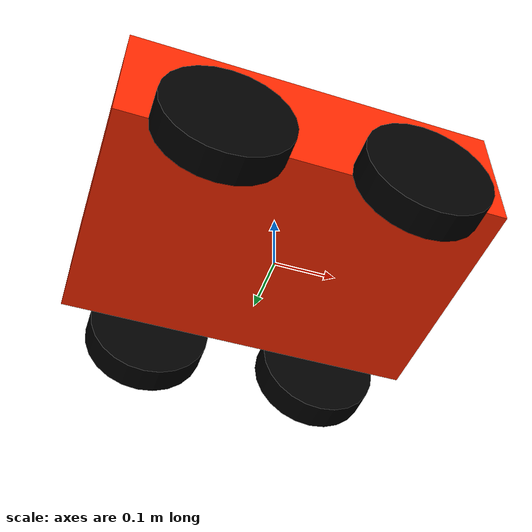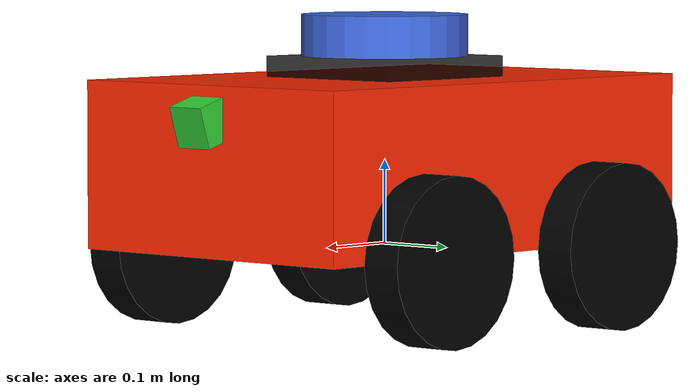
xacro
<?xml version="1.0" ?>
<robot name="one_robot" xmlns:xacro="http://www.ros.org/wiki/xacro">

  <!-- Properties -->
  <xacro:property name="base_width" value="0.4"/>
  <xacro:property name="base_length" value="0.6"/>
  <xacro:property name="base_height" value="0.2"/>
  <xacro:property name="wheel_radius" value="0.1"/>
  <xacro:property name="wheel_width" value="0.05"/>
  <xacro:property name="wheel_mass" value="2.5"/>
  <xacro:property name="base_mass" value="15.0"/>

  <!-- Materials -->
  <material name="red">
    <color rgba="1 0.156 0 1"/>
  </material>

  <material name="blue">
    <color rgba="0.25 0.41 0.88 1"/>
  </material>

  <material name="green">
    <color rgba="0.2 0.8 0.2 1"/>
  </material>

  <material name="black">
    <color rgba="0 0 0 1"/>
  </material>

  <material name="black_lidar">
    <color rgba="0 0 0 0.8"/>
  </material>

  <!-- Base Link -->
  <link name="base_link">
    <visual>
      <geometry>
        <box size="${base_length} ${base_width} ${base_height}"/>
      </geometry>
      <origin xyz="0 0 ${base_height/2}" rpy="0 0 0"/>
      <material name="red"/>
    </visual>
    <collision>
      <geometry>
        <box size="${base_length} ${base_width} ${base_height}"/>
      </geometry>
      <origin xyz="0 0 ${base_height/2}" rpy="0 0 0"/>
    </collision>
    <inertial>
      <origin xyz="0 0 ${base_height/2}" rpy="0 0 0"/>
      <mass value="${base_mass}"/>
      <inertia ixx="${(1/12) * base_mass * (base_width*base_width + base_height*base_height)}"
               ixy="0"
               ixz="0"
               iyy="${(1/12) * base_mass * (base_length*base_length + base_height*base_height)}"
               iyz="0"
               izz="${(1/12) * base_mass * (base_width*base_width + base_length*base_length)}"/>
    </inertial>
  </link>

  <!-- Camera Link -->
  <link name="camera_link">
    <visual>
      <geometry>
        <box size="0.05 0.05 0.05"/>
      </geometry>
      <origin xyz="0.05 0 0.025" rpy="0 0 0"/>
      <material name="green"/>
    </visual>
    <collision>
      <geometry>
        <box size="0.05 0.05 0.05"/>
      </geometry>
      <origin xyz="0.05 0 0.025" rpy="0 0 0"/>
    </collision>
    <inertial>
      <origin xyz="0 0 0.025" rpy="0 0 0"/>
      <mass value="0.1"/>
      <inertia ixx="0.001" ixy="0" ixz="0" iyy="0.001" iyz="0" izz="0.001"/>
    </inertial>
  </link>

  <!-- Lidar Support Link -->
  <link name="lidar_support_link">
    <visual>
      <geometry>
        <box size="0.2 0.2 0.025"/>
      </geometry>
      <origin xyz="0 0 0.0125" rpy="0 0 0"/>
      <material name="black_lidar"/>
    </visual>
    <collision>
      <geometry>
        <box size="0.2 0.2 0.025"/>
      </geometry>
      <origin xyz="0 0 0.0125" rpy="0 0 0"/>
    </collision>
    <inertial>
      <origin xyz="0 0 0.0125" rpy="0 0 0"/>
      <mass value="0.5"/>
      <inertia ixx="0.01" ixy="0" ixz="0" iyy="0.01" iyz="0" izz="0.01"/>
    </inertial>
  </link>

  <!-- Lidar Link -->
  <link name="lidar_link">
    <visual>
      <geometry>
        <cylinder radius="0.1" length="0.05"/>
      </geometry>
      <origin xyz="0 0 0.025" rpy="0 0 0"/>
      <material name="blue"/>
    </visual>
    <collision>
      <geometry>
        <cylinder radius="0.1" length="0.05"/>
      </geometry>
      <origin xyz="0 0 0.025" rpy="0 0 0"/>
    </collision>
    <inertial>
      <origin xyz="0 0 0.025" rpy="0 0 0"/>
      <mass value="1.0"/>
      <inertia ixx="0.01" ixy="0" ixz="0" iyy="0.01" iyz="0" izz="0.01"/>
    </inertial>
  </link>

  <!-- Wheel Links -->
  <xacro:macro name="wheel_link" params="name">
    <link name="${name}">
      <visual>
        <geometry>
          <cylinder radius="${wheel_radius}" length="${wheel_width}"/>
        </geometry>
        <origin xyz="0 0 0" rpy="1.57 0 0"/>
        <material name="black"/>
      </visual>
      <collision>
        <geometry>
          <cylinder radius="${wheel_radius}" length="${wheel_width}"/>
        </geometry>
        <origin xyz="0 0 0" rpy="1.57 0 0"/>
      </collision>
      <inertial>
        <origin xyz="0 0 0" rpy="1.57 0 0"/>
        <mass value="${wheel_mass}"/>
        <inertia ixx="${(1/12) * wheel_mass * (3*wheel_radius*wheel_radius + wheel_width*wheel_width)}"
                 ixy="0"
                 ixz="0"
                 iyy="${(1/12) * wheel_mass * (3*wheel_radius*wheel_radius + wheel_width*wheel_width)}"
                 iyz="0"
                 izz="${(1/2) * wheel_mass * wheel_radius*wheel_radius}"/>
      </inertial>
    </link>
  </xacro:macro>

  <xacro:wheel_link name="left_wheel_front"/>
  <xacro:wheel_link name="left_wheel_back"/>
  <xacro:wheel_link name="right_wheel_front"/>
  <xacro:wheel_link name="right_wheel_back"/>

  <!-- Joints -->
  <joint name="base_wheel_left_front" type="continuous">
    <parent link="base_link"/>
    <child link="left_wheel_front"/>
    <origin xyz="0.15 0.225 0" rpy="0 0 0"/>
    <axis xyz="0 1 0"/>
  </joint>

  <joint name="base_wheel_left_back" type="continuous">
    <parent link="base_link"/>
    <child link="left_wheel_back"/>
    <origin xyz="-0.15 0.225 0" rpy="0 0 0"/>
    <axis xyz="0 1 0"/>
  </joint>

  <joint name="base_wheel_right_front" type="continuous">
    <parent link="base_link"/>
    <child link="right_wheel_front"/>
    <origin xyz="0.15 -0.225 0" rpy="0 0 0"/>
    <axis xyz="0 1 0"/>
  </joint>

  <joint name="base_wheel_right_back" type="continuous">
    <parent link="base_link"/>
    <child link="right_wheel_back"/>
    <origin xyz="-0.15 -0.225 0" rpy="0 0 0"/>
    <axis xyz="0 1 0"/>
  </joint>

  <!-- Camera Joint - positioned at front of robot, angled down -->
  <joint name="base_to_camera" type="fixed">
    <parent link="base_link"/>
    <child link="camera_link"/>
    <origin xyz="0.25 0 0.15" rpy="0 0.3 0"/>
  </joint>

  <joint name="base_to_lidar_support" type="fixed">
    <parent link="base_link"/>
    <child link="lidar_support_link"/>
    <origin xyz="0 0 0.2" rpy="0 0 0"/>
  </joint>

  <joint name="lidar_rotation_joint" type="fixed">
    <parent link="lidar_support_link"/>
    <child link="lidar_link"/>
    <origin xyz="0 0 0.025" rpy="0 0 0"/>
  </joint>

  <!-- Include Gazebo configurations -->
  <xacro:include filename="$(find boffin_robot)/urdf/one_robot.gazebo"/>

</robot>
